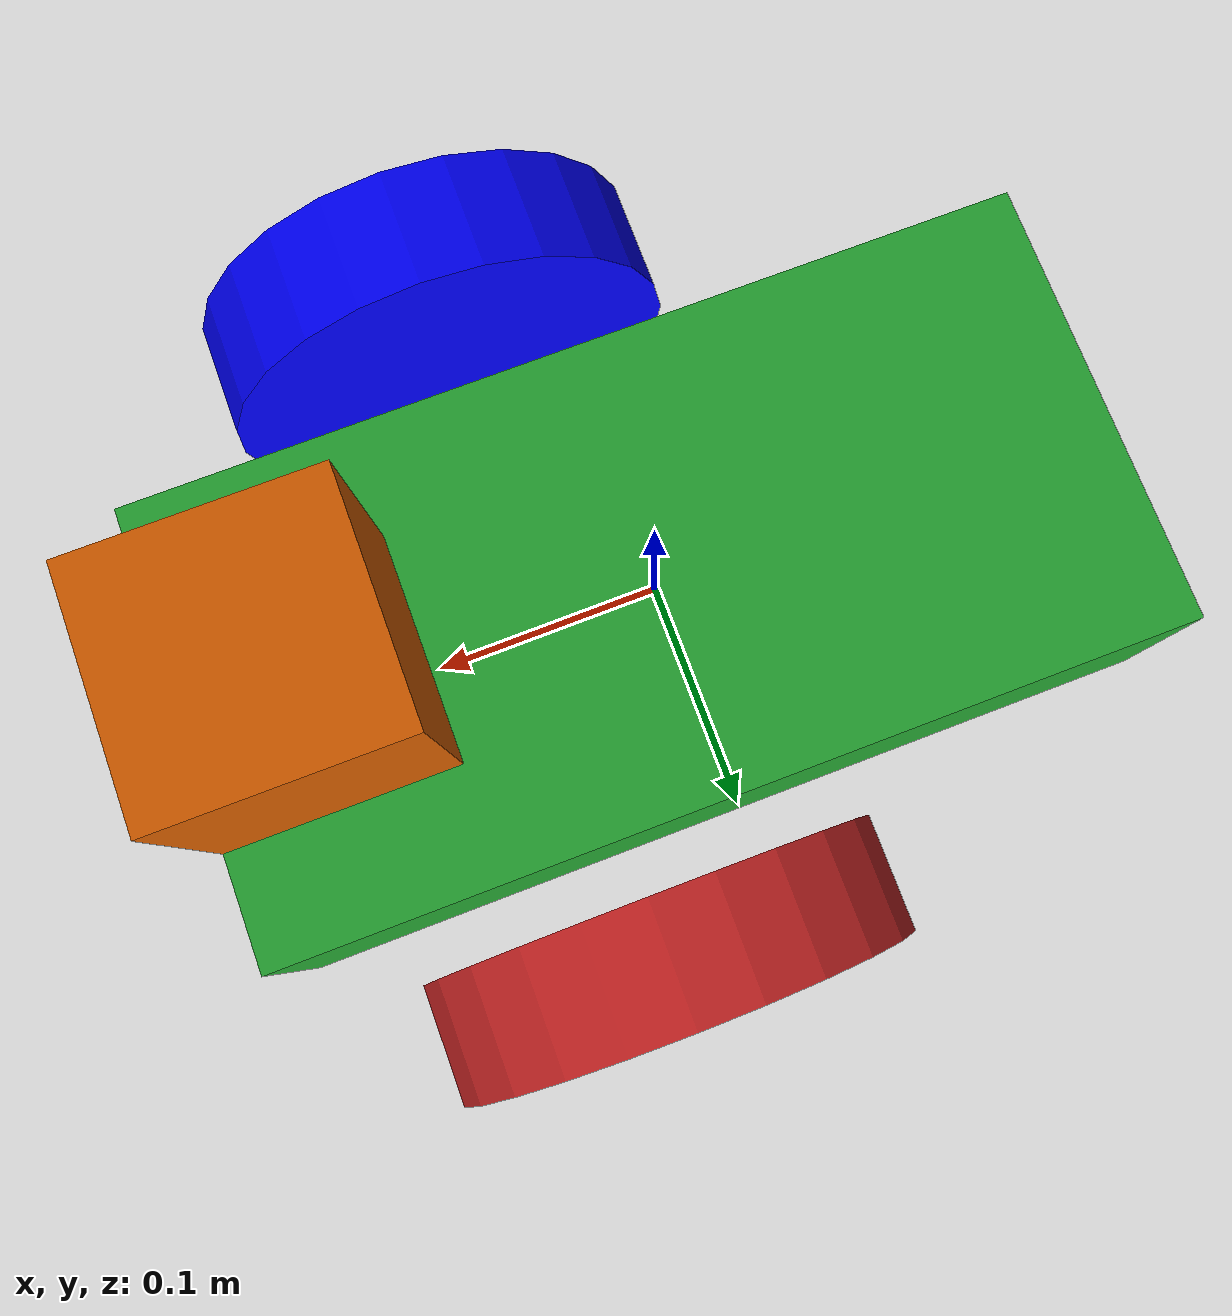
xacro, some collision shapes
<?xml version='1.0'?>

<robot name="my_robot" xmlns:xacro="http://www.ros.org/wiki/xacro">
<xacro:include filename="$(find my_robot)/urdf/my_robot.gazebo" />

  <link name="robot_footprint"></link>

  <joint name="robot_footprint_joint" type="fixed">
    <origin xyz="0 0 0" rpy="0 0 0" />
    <parent link="robot_footprint"/>
    <child link="chassis" />
  </joint>

  <link name='chassis'>
    <pose>0 0 0.1 0 0 0</pose>

    <inertial>
      <mass value="15.0"/>
      <origin xyz="0.0 0 0" rpy=" 0 0 0"/>
      <inertia
          ixx="0.1" ixy="0" ixz="0"
          iyy="0.1" iyz="0"
          izz="0.1"
      />
    </inertial>

    <collision name='collision'>
      <origin xyz="0 0 0" rpy=" 0 0 0"/>
      <geometry>
        <box size=".4 .2 .1"/>
      </geometry>
    </collision>

    <visual name='chassis_visual'>
      <origin xyz="0 0 0" rpy=" 0 0 0"/>
      <geometry>
        <box size=".4 .2 .1"/>
      </geometry>
    </visual>

    <collision name='back_caster_collision'>
      <origin xyz="-0.15 0 -0.05" rpy=" 0 0 0"/>
      <geometry>
        <sphere radius="0.0499"/>
      </geometry>
    </collision>

    <visual name='back_caster_visual'>
      <origin xyz="-0.15 0 -0.05" rpy=" 0 0 0"/>
      <geometry>
        <sphere radius="0.05"/>
      </geometry>
    </visual>

  </link>

<gazebo reference="chassis">
    <material>Gazebo/Green</material>
</gazebo>

<link name="left_wheel">
    <collision name='left_wheel_coll'>
      <origin xyz="0 0 0" rpy="0 1.5707 1.5707"/>
      <geometry>
        <cylinder radius="0.1" length="0.05"/>
      </geometry>
    </collision>

    <visual name='left_wheel_v'>
      <origin xyz="0 0 0" rpy="0 1.5707 1.5707"/>
      <geometry>
        <cylinder radius="0.1" length="0.05"/>
      </geometry>
    </visual>

    <inertial>
      <mass value="5.0"/>
      <origin xyz="0.0 0 0" rpy="0 1.5707 1.5707"/>
      <inertia
          ixx="0.1" ixy="0" ixz="0"
          iyy="0.1" iyz="0"
          izz="0.1"
      />
    </inertial>
  </link>

<gazebo reference="right_wheel">
    <material>Gazebo/Blue</material>
</gazebo>

  <link name="right_wheel">
    <collision name='right_wheel_coll'>
      <origin xyz="0 0 0" rpy="0 1.5707 1.5707"/>
      <geometry>
        <cylinder radius="0.1" length="0.05"/>
      </geometry>
    </collision>

    <visual name='right_wheel_v'>
      <origin xyz="0 0 0" rpy="0 1.5707 1.5707"/>
      <geometry>
        <cylinder radius="0.1" length="0.05"/>
      </geometry>
       <material name="blue">
        <color rgba="0 0 1 1"/>
        </material>
    </visual>

    <inertial>
      <mass value="5.0"/>
      <origin xyz="0.0 0 0" rpy="0 1.5707 1.5707"/>
      <inertia
          ixx="0.1" ixy="0" ixz="0"
          iyy="0.1" iyz="0"
          izz="0.1"
      />
    </inertial>
  </link>

<gazebo reference="left_wheel">
    <material>Gazebo/Red</material>
</gazebo>

  <joint type="continuous" name="left_wheel_hinge">
    <origin xyz="0.05 0.15 0" rpy="0 0 0"/>
    <child link="left_wheel"/>
    <parent link="chassis"/>
    <axis xyz="0 1 0" rpy="0 0 0"/>
    <limit effort="10000" velocity="1000"/>
    <dynamics damping="1.0" friction="1.0"/>
  </joint>

  <joint type="continuous" name="right_wheel_hinge">
    <origin xyz="0.05 -0.15 0" rpy="0 0 0"/>
    <child link="right_wheel"/>
    <parent link="chassis"/>
    <axis xyz="0 1 0" rpy="0 0 0"/>
    <limit effort="10000" velocity="1000"/>
    <dynamics damping="1.0" friction="1.0"/>
  </joint>

  <link name="camera">
   <collision name='camera_coll'>
      <origin xyz="0 0 0" rpy="0 0 0"/>
      <geometry>
        <box size="0.05 0.05 0.05"/>
      </geometry>
    </collision>
    <visual name="camera">
    <origin xyz="0 0 0" rpy="0 0 0"/>
      <geometry>
        <box size="0.05 0.05 0.05"/>
      </geometry>
    </visual>
    <inertial>
      <mass value="0.1"/>
      <origin xyz="0.0 0 0" rpy="0 0 0"/>
      <inertia
          ixx="1e-6" ixy="0" ixz="0"
          iyy="1e-6" iyz="0"
          izz="1e-6"
      />
    </inertial>
  </link>
  <joint type="fixed" name="camera_joint">
    <origin xyz="0.2 0 0" rpy="0 0 0"/>
    <child link="camera"/>
    <parent link="chassis"/>
    <axis xyz="0 1 0" rpy="0 0 0"/>
  </joint>
  <link name="hokuyo">
    <collision name='hokuyo_coll'>
      <origin xyz="0 0 0" rpy="0 0 0"/>
      <geometry>
        <box size="0.1 0.1 0.1"/>
      </geometry>
    </collision>

    <visual name='hokuyo_visual'>
      <origin xyz="0 0 0" rpy="0 0 0"/>
      <geometry>
        <mesh filename="package://my_robot/meshes/hokuyo.dae"/>
      </geometry>
    </visual>

    <inertial>
      <mass value="1e-5"/>
      <origin xyz="0.0 0 0" rpy="0 0 0"/>
      <inertia
          ixx="1e-6" ixy="0" ixz="0"
          iyy="1e-6" iyz="0"
          izz="1e-6"
      />
    </inertial>
  </link>
  <joint type="fixed" name="hokuyo_joint">
    <origin xyz="0.15 0 0.1" rpy="0 0 0"/>
    <child link="hokuyo"/>
    <parent link="chassis"/>
    <axis xyz="0 1 0" rpy="0 0 0"/>
  </joint>

</robot>
